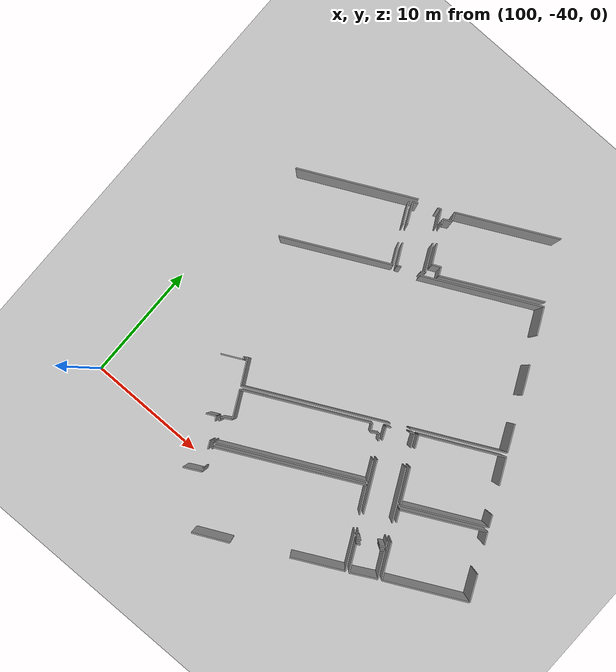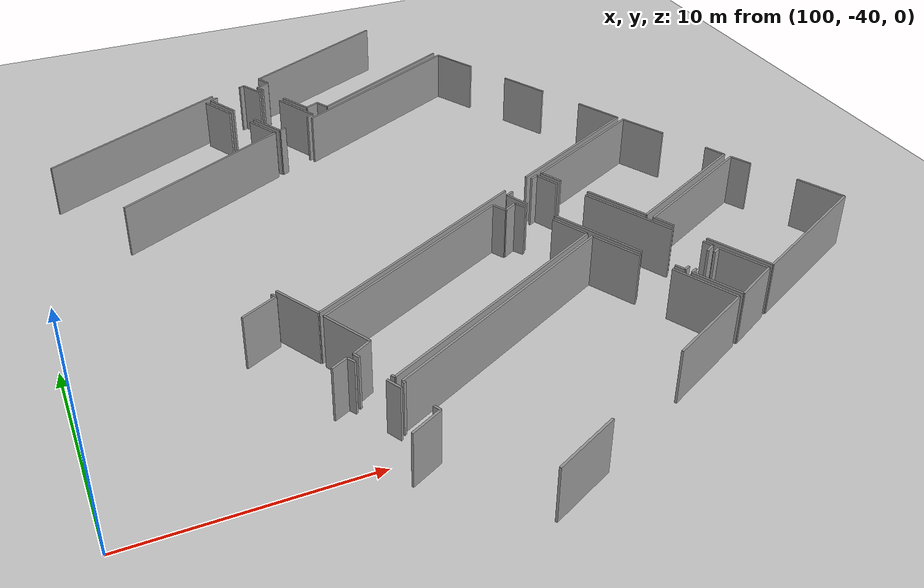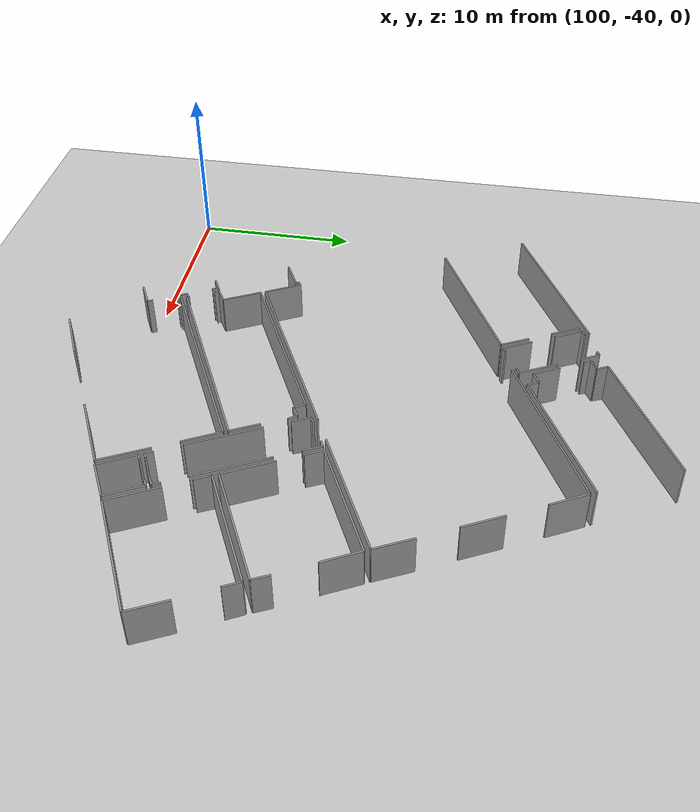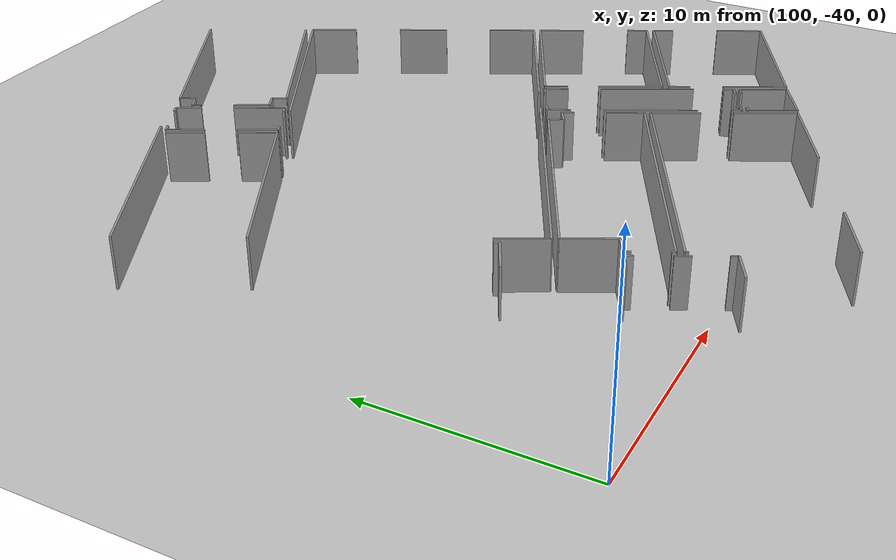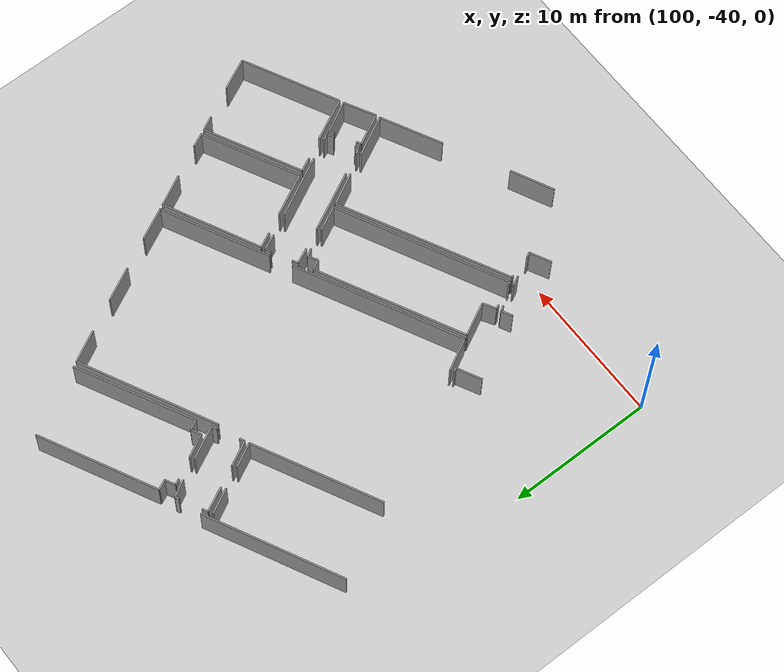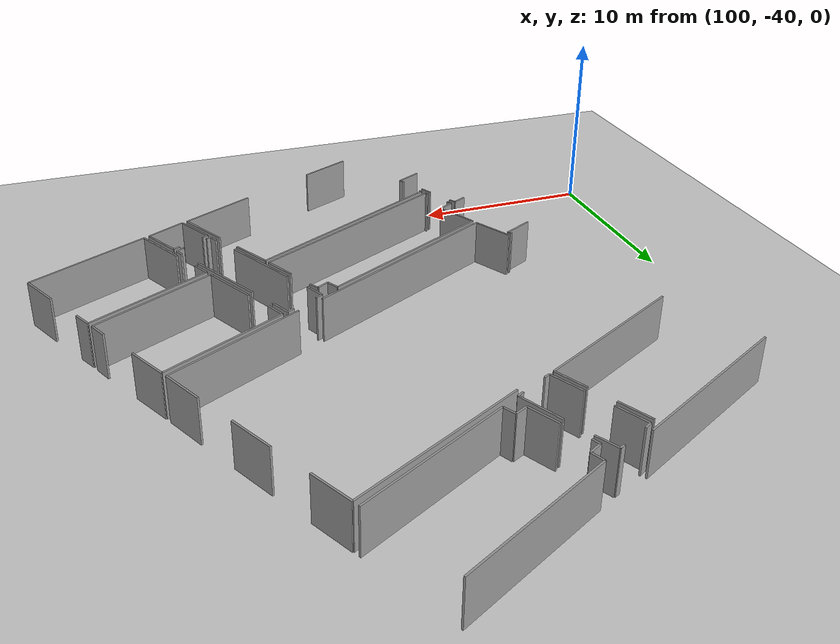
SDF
<sdf version="1.6">
 <world name="default">
  <model name="ground_plane">
   <static>1</static>
   <link name="link">
    <collision name="collision">
     <geometry><plane><normal>0 0 1</normal><size>100 100</size></plane></geometry>
     <surface><friction><ode><mu>100</mu><mu2>50</mu2></ode></friction></surface>
    </collision>
    <visual name="visual">
     <cast_shadows>0</cast_shadows>
     <geometry><plane><normal>0 0 1</normal><size>100 100</size></plane></geometry>
     <material>
      <script><uri>file://media/materials/scripts/gazebo.material</uri><name>Gazebo/Grey</name></script>
     </material>
    </visual>
   </link>
  </model>
  <model name="0510045926_A-40">
   <static>1</static>
   <link name="Wall_68">
    <collision name="Wall_68_Collision">
     <geometry><box><size>9.81023111275 0.1 2.5</size></box></geometry>
     <pose>4.90511555638 0 1.25 0 0 0</pose>
    </collision>
    <visual name="Wall_68_Visual">
     <pose>4.90511555638 0 1.25 0 0 0</pose>
     <geometry><box><size>9.81023111275 0.1 2.5</size></box></geometry>
     <material>
      <script><uri>file://media/materials/scripts/gazebo.material</uri><name>Gazebo/Grey</name></script>
      <ambient>1 1 1 1</ambient>
     </material>
    </visual>
    <pose>244.481219421 -114.623836328 0 0 0 -2.67345532135</pose>
   </link>
   <link name="Wall_72">
    <collision name="Wall_72_Collision">
     <geometry><box><size>8.47973960318 0.1 2.5</size></box></geometry>
     <pose>4.23986980159 0 1.25 0 0 0</pose>
    </collision>
    <visual name="Wall_72_Visual">
     <pose>4.23986980159 0 1.25 0 0 0</pose>
     <geometry><box><size>8.47973960318 0.1 2.5</size></box></geometry>
     <material>
      <script><uri>file://media/materials/scripts/gazebo.material</uri><name>Gazebo/Grey</name></script>
      <ambient>1 1 1 1</ambient>
     </material>
    </visual>
    <pose>247.27339878 -113.545039757 0 0 0 0.471599567978</pose>
   </link>
   <link name="Wall_75">
    <collision name="Wall_75_Collision">
     <geometry><box><size>8.49327325138 0.1 2.5</size></box></geometry>
     <pose>4.24663662569 0 1.25 0 0 0</pose>
    </collision>
    <visual name="Wall_75_Visual">
     <pose>4.24663662569 0 1.25 0 0 0</pose>
     <geometry><box><size>8.49327325138 0.1 2.5</size></box></geometry>
     <material>
      <script><uri>file://media/materials/scripts/gazebo.material</uri><name>Gazebo/Grey</name></script>
      <ambient>1 1 1 1</ambient>
     </material>
    </visual>
    <pose>257.127253574 -114.171757106 0 0 0 -2.66687804916</pose>
   </link>
   <link name="Wall_76">
    <collision name="Wall_76_Collision">
     <geometry><box><size>0.700529150853 0.1 2.5</size></box></geometry>
     <pose>0.350264575427 0 1.25 0 0 0</pose>
    </collision>
    <visual name="Wall_76_Visual">
     <pose>0.350264575427 0 1.25 0 0 0</pose>
     <geometry><box><size>0.700529150853 0.1 2.5</size></box></geometry>
     <material>
      <script><uri>file://media/materials/scripts/gazebo.material</uri><name>Gazebo/Grey</name></script>
      <ambient>1 1 1 1</ambient>
     </material>
    </visual>
    <pose>249.573139235 -118.053901753 0 0 0 2.05308035166</pose>
   </link>
   <link name="Wall_77">
    <collision name="Wall_77_Collision">
     <geometry><box><size>0.720053055425 0.1 2.5</size></box></geometry>
     <pose>0.360026527713 0 1.25 0 0 0</pose>
    </collision>
    <visual name="Wall_77_Visual">
     <pose>0.360026527713 0 1.25 0 0 0</pose>
     <geometry><box><size>0.720053055425 0.1 2.5</size></box></geometry>
     <material>
      <script><uri>file://media/materials/scripts/gazebo.material</uri><name>Gazebo/Grey</name></script>
      <ambient>1 1 1 1</ambient>
     </material>
    </visual>
    <pose>249.248231091 -117.433276432 0 0 0 -2.69623376527</pose>
   </link>
   <link name="Wall_78">
    <collision name="Wall_78_Collision">
     <geometry><box><size>1.67538316819 0.1 2.5</size></box></geometry>
     <pose>0.837691584093 0 1.25 0 0 0</pose>
    </collision>
    <visual name="Wall_78_Visual">
     <pose>0.837691584093 0 1.25 0 0 0</pose>
     <geometry><box><size>1.67538316819 0.1 2.5</size></box></geometry>
     <material>
      <script><uri>file://media/materials/scripts/gazebo.material</uri><name>Gazebo/Grey</name></script>
      <ambient>1 1 1 1</ambient>
     </material>
    </visual>
    <pose>248.598414804 -117.743462175 0 0 0 2.05971983139</pose>
   </link>
   <link name="Wall_79">
    <collision name="Wall_79_Collision">
     <geometry><box><size>0.420698711904 0.1 2.5</size></box></geometry>
     <pose>0.210349355952 0 1.25 0 0 0</pose>
    </collision>
    <visual name="Wall_79_Visual">
     <pose>0.210349355952 0 1.25 0 0 0</pose>
     <geometry><box><size>0.420698711904 0.1 2.5</size></box></geometry>
     <material>
      <script><uri>file://media/materials/scripts/gazebo.material</uri><name>Gazebo/Grey</name></script>
      <ambient>1 1 1 1</ambient>
     </material>
    </visual>
    <pose>247.103329674 -114.913969146 0 0 0 2.03363443786</pose>
   </link>
   <link name="Wall_80">
    <collision name="Wall_80_Collision">
     <geometry><box><size>0.740275066912 0.1 2.5</size></box></geometry>
     <pose>0.370137533456 0 1.25 0 0 0</pose>
    </collision>
    <visual name="Wall_80_Visual">
     <pose>0.370137533456 0 1.25 0 0 0</pose>
     <geometry><box><size>0.740275066912 0.1 2.5</size></box></geometry>
     <material>
      <script><uri>file://media/materials/scripts/gazebo.material</uri><name>Gazebo/Grey</name></script>
      <ambient>1 1 1 1</ambient>
     </material>
    </visual>
    <pose>246.915492153 -114.537532602 0 0 0 0.499538282074</pose>
   </link>
   <link name="Wall_81">
    <collision name="Wall_81_Collision">
     <geometry><box><size>0.701505440802 0.1 2.5</size></box></geometry>
     <pose>0.350752720401 0 1.25 0 0 0</pose>
    </collision>
    <visual name="Wall_81_Visual">
     <pose>0.350752720401 0 1.25 0 0 0</pose>
     <geometry><box><size>0.701505440802 0.1 2.5</size></box></geometry>
     <material>
      <script><uri>file://media/materials/scripts/gazebo.material</uri><name>Gazebo/Grey</name></script>
      <ambient>1 1 1 1</ambient>
     </material>
    </visual>
    <pose>247.565308441 -114.182925823 0 0 0 1.99996925808</pose>
   </link>
   <link name="Wall_83">
    <collision name="Wall_83_Collision">
     <geometry><box><size>1.79660687919 0.1 2.5</size></box></geometry>
     <pose>0.898303439596 0 1.25 0 0 0</pose>
    </collision>
    <visual name="Wall_83_Visual">
     <pose>0.898303439596 0 1.25 0 0 0</pose>
     <geometry><box><size>1.79660687919 0.1 2.5</size></box></geometry>
     <material>
      <script><uri>file://media/materials/scripts/gazebo.material</uri><name>Gazebo/Grey</name></script>
      <ambient>1 1 1 1</ambient>
     </material>
    </visual>
    <pose>244.016702309 -115.231262255 0 0 0 -1.09849229305</pose>
   </link>
   <link name="Wall_84">
    <collision name="Wall_84_Collision">
     <geometry><box><size>1.76981079068 0.1 2.5</size></box></geometry>
     <pose>0.884905395342 0 1.25 0 0 0</pose>
    </collision>
    <visual name="Wall_84_Visual">
     <pose>0.884905395342 0 1.25 0 0 0</pose>
     <geometry><box><size>1.76981079068 0.1 2.5</size></box></geometry>
     <material>
      <script><uri>file://media/materials/scripts/gazebo.material</uri><name>Gazebo/Grey</name></script>
      <ambient>1 1 1 1</ambient>
     </material>
    </visual>
    <pose>245.519402474 -118.153658707 0 0 0 -1.09881023242</pose>
   </link>
   <link name="Wall_85">
    <collision name="Wall_85_Collision">
     <geometry><box><size>9.13383298574 0.1 2.5</size></box></geometry>
     <pose>4.56691649287 0 1.25 0 0 0</pose>
    </collision>
    <visual name="Wall_85_Visual">
     <pose>4.56691649287 0 1.25 0 0 0</pose>
     <geometry><box><size>9.13383298574 0.1 2.5</size></box></geometry>
     <material>
      <script><uri>file://media/materials/scripts/gazebo.material</uri><name>Gazebo/Grey</name></script>
      <ambient>1 1 1 1</ambient>
     </material>
    </visual>
    <pose>246.324057798 -119.729970872 0 0 0 -2.67026426497</pose>
   </link>
   <link name="Wall_88">
    <collision name="Wall_88_Collision">
     <geometry><box><size>0.403103551538 0.1 2.5</size></box></geometry>
     <pose>0.201551775769 0 1.25 0 0 0</pose>
    </collision>
    <visual name="Wall_88_Visual">
     <pose>0.201551775769 0 1.25 0 0 0</pose>
     <geometry><box><size>0.403103551538 0.1 2.5</size></box></geometry>
     <material>
      <script><uri>file://media/materials/scripts/gazebo.material</uri><name>Gazebo/Grey</name></script>
      <ambient>1 1 1 1</ambient>
     </material>
    </visual>
    <pose>244.29845859 -115.059416308 0 0 0 0.504774349556</pose>
   </link>
   <link name="Wall_89">
    <collision name="Wall_89_Collision">
     <geometry><box><size>0.293353607777 0.1 2.5</size></box></geometry>
     <pose>0.146676803888 0 1.25 0 0 0</pose>
    </collision>
    <visual name="Wall_89_Visual">
     <pose>0.146676803888 0 1.25 0 0 0</pose>
     <geometry><box><size>0.293353607777 0.1 2.5</size></box></geometry>
     <material>
      <script><uri>file://media/materials/scripts/gazebo.material</uri><name>Gazebo/Grey</name></script>
      <ambient>1 1 1 1</ambient>
     </material>
    </visual>
    <pose>246.047378207 -114.167188085 0 0 0 0.451264341083</pose>
   </link>
   <link name="Wall_90">
    <collision name="Wall_90_Collision">
     <geometry><box><size>1.1989457336 0.1 2.5</size></box></geometry>
     <pose>0.599472866799 0 1.25 0 0 0</pose>
    </collision>
    <visual name="Wall_90_Visual">
     <pose>0.599472866799 0 1.25 0 0 0</pose>
     <geometry><box><size>1.1989457336 0.1 2.5</size></box></geometry>
     <material>
      <script><uri>file://media/materials/scripts/gazebo.material</uri><name>Gazebo/Grey</name></script>
      <ambient>1 1 1 1</ambient>
     </material>
    </visual>
    <pose>246.311366074 -114.039255503 0 0 0 -1.07428825048</pose>
   </link>
   <link name="Wall_91">
    <collision name="Wall_91_Collision">
     <geometry><box><size>2.36640308447 0.1 2.5</size></box></geometry>
     <pose>1.18320154223 0 1.25 0 0 0</pose>
    </collision>
    <visual name="Wall_91_Visual">
     <pose>1.18320154223 0 1.25 0 0 0</pose>
     <geometry><box><size>2.36640308447 0.1 2.5</size></box></geometry>
     <material>
      <script><uri>file://media/materials/scripts/gazebo.material</uri><name>Gazebo/Grey</name></script>
      <ambient>1 1 1 1</ambient>
     </material>
    </visual>
    <pose>247.560231751 -116.441545091 0 0 0 -1.10585350601</pose>
   </link>
   <link name="Wall_92">
    <collision name="Wall_92_Collision">
     <geometry><box><size>0.372161959182 0.1 2.5</size></box></geometry>
     <pose>0.186080979591 0 1.25 0 0 0</pose>
    </collision>
    <visual name="Wall_92_Visual">
     <pose>0.186080979591 0 1.25 0 0 0</pose>
     <geometry><box><size>0.372161959182 0.1 2.5</size></box></geometry>
     <material>
      <script><uri>file://media/materials/scripts/gazebo.material</uri><name>Gazebo/Grey</name></script>
      <ambient>1 1 1 1</ambient>
     </material>
    </visual>
    <pose>248.621259907 -118.556747873 0 0 0 -2.63217550479</pose>
   </link>
   <link name="Wall_93">
    <collision name="Wall_93_Collision">
     <geometry><box><size>0.345186905037 0.1 2.5</size></box></geometry>
     <pose>0.172593452518 0 1.25 0 0 0</pose>
    </collision>
    <visual name="Wall_93_Visual">
     <pose>0.172593452518 0 1.25 0 0 0</pose>
     <geometry><box><size>0.345186905037 0.1 2.5</size></box></geometry>
     <material>
      <script><uri>file://media/materials/scripts/gazebo.material</uri><name>Gazebo/Grey</name></script>
      <ambient>1 1 1 1</ambient>
     </material>
    </visual>
    <pose>246.923107188 -119.438568881 0 0 0 -2.70096729207</pose>
   </link>
   <link name="Wall_94">
    <collision name="Wall_94_Collision">
     <geometry><box><size>1.83971049925 0.1 2.5</size></box></geometry>
     <pose>0.919855249623 0 1.25 0 0 0</pose>
    </collision>
    <visual name="Wall_94_Visual">
     <pose>0.919855249623 0 1.25 0 0 0</pose>
     <geometry><box><size>1.83971049925 0.1 2.5</size></box></geometry>
     <material>
      <script><uri>file://media/materials/scripts/gazebo.material</uri><name>Gazebo/Grey</name></script>
      <ambient>1 1 1 1</ambient>
     </material>
    </visual>
    <pose>246.610890769 -119.585792884 0 0 0 2.05129003395</pose>
   </link>
   <link name="Wall_95">
    <collision name="Wall_95_Collision">
     <geometry><box><size>1.75046671518 0.1 2.5</size></box></geometry>
     <pose>0.875233357588 0 1.25 0 0 0</pose>
    </collision>
    <visual name="Wall_95_Visual">
     <pose>0.875233357588 0 1.25 0 0 0</pose>
     <geometry><box><size>1.75046671518 0.1 2.5</size></box></geometry>
     <material>
      <script><uri>file://media/materials/scripts/gazebo.material</uri><name>Gazebo/Grey</name></script>
      <ambient>1 1 1 1</ambient>
     </material>
    </visual>
    <pose>245.087883845 -116.621767576 0 0 0 2.03865921563</pose>
   </link>
   <link name="Wall_97">
    <collision name="Wall_97_Collision">
     <geometry><box><size>9.87083370166 0.1 2.5</size></box></geometry>
     <pose>4.93541685083 0 1.25 0 0 0</pose>
    </collision>
    <visual name="Wall_97_Visual">
     <pose>4.93541685083 0 1.25 0 0 0</pose>
     <geometry><box><size>9.87083370166 0.1 2.5</size></box></geometry>
     <material>
      <script><uri>file://media/materials/scripts/gazebo.material</uri><name>Gazebo/Grey</name></script>
      <ambient>1 1 1 1</ambient>
     </material>
    </visual>
    <pose>248.461344181 -118.972782597 0 0 0 0.467741751939</pose>
   </link>
   <link name="Wall_98">
    <collision name="Wall_98_Collision">
     <geometry><box><size>2.29858991237 0.1 2.5</size></box></geometry>
     <pose>1.14929495619 0 1.25 0 0 0</pose>
    </collision>
    <visual name="Wall_98_Visual">
     <pose>1.14929495619 0 1.25 0 0 0</pose>
     <geometry><box><size>2.29858991237 0.1 2.5</size></box></geometry>
     <material>
      <script><uri>file://media/materials/scripts/gazebo.material</uri><name>Gazebo/Grey</name></script>
      <ambient>1 1 1 1</ambient>
     </material>
    </visual>
    <pose>257.271939232 -114.522302533 0 0 0 -1.09099878348</pose>
   </link>
   <link name="Wall_99">
    <collision name="Wall_99_Collision">
     <geometry><box><size>2.45838987864 0.1 2.5</size></box></geometry>
     <pose>1.22919493932 0 1.25 0 0 0</pose>
    </collision>
    <visual name="Wall_99_Visual">
     <pose>1.22919493932 0 1.25 0 0 0</pose>
     <geometry><box><size>2.45838987864 0.1 2.5</size></box></geometry>
     <material>
      <script><uri>file://media/materials/scripts/gazebo.material</uri><name>Gazebo/Grey</name></script>
      <ambient>1 1 1 1</ambient>
     </material>
    </visual>
    <pose>259.399072235 -118.616652812 0 0 0 -1.10151523472</pose>
   </link>
   <link name="Wall_100">
    <collision name="Wall_100_Collision">
     <geometry><box><size>2.3173930552 0.1 2.5</size></box></geometry>
     <pose>1.1586965276 0 1.25 0 0 0</pose>
    </collision>
    <visual name="Wall_100_Visual">
     <pose>1.1586965276 0 1.25 0 0 0</pose>
     <geometry><box><size>2.3173930552 0.1 2.5</size></box></geometry>
     <material>
      <script><uri>file://media/materials/scripts/gazebo.material</uri><name>Gazebo/Grey</name></script>
      <ambient>1 1 1 1</ambient>
     </material>
    </visual>
    <pose>261.549050342 -122.8376665 0 0 0 -1.11239017073</pose>
   </link>
   <link name="Wall_101">
    <collision name="Wall_101_Collision">
     <geometry><box><size>7.75143099481 0.1 2.5</size></box></geometry>
     <pose>3.8757154974 0 1.25 0 0 0</pose>
    </collision>
    <visual name="Wall_101_Visual">
     <pose>3.8757154974 0 1.25 0 0 0</pose>
     <geometry><box><size>7.75143099481 0.1 2.5</size></box></geometry>
     <material>
      <script><uri>file://media/materials/scripts/gazebo.material</uri><name>Gazebo/Grey</name></script>
      <ambient>1 1 1 1</ambient>
     </material>
    </visual>
    <pose>262.57454167 -124.915809446 0 0 0 -2.67114980048</pose>
   </link>
   <link name="Wall_102">
    <collision name="Wall_102_Collision">
     <geometry><box><size>11.929153475 0.1 2.5</size></box></geometry>
     <pose>5.9645767375 0 1.25 0 0 0</pose>
    </collision>
    <visual name="Wall_102_Visual">
     <pose>5.9645767375 0 1.25 0 0 0</pose>
     <geometry><box><size>11.929153475 0.1 2.5</size></box></geometry>
     <material>
      <script><uri>file://media/materials/scripts/gazebo.material</uri><name>Gazebo/Grey</name></script>
      <ambient>1 1 1 1</ambient>
     </material>
    </visual>
    <pose>254.253847179 -129.1512917 0 0 0 -2.67065569776</pose>
   </link>
   <link name="Wall_103">
    <collision name="Wall_103_Collision">
     <geometry><box><size>2.31049185731 0.1 2.5</size></box></geometry>
     <pose>1.15524592865 0 1.25 0 0 0</pose>
    </collision>
    <visual name="Wall_103_Visual">
     <pose>1.15524592865 0 1.25 0 0 0</pose>
     <geometry><box><size>2.31049185731 0.1 2.5</size></box></geometry>
     <material>
      <script><uri>file://media/materials/scripts/gazebo.material</uri><name>Gazebo/Grey</name></script>
      <ambient>1 1 1 1</ambient>
     </material>
    </visual>
    <pose>243.623258854 -134.563804471 0 0 0 2.06156792197</pose>
   </link>
   <link name="Wall_106">
    <collision name="Wall_106_Collision">
     <geometry><box><size>10.6123861946 0.1 2.5</size></box></geometry>
     <pose>5.30619309732 0 1.25 0 0 0</pose>
    </collision>
    <visual name="Wall_106_Visual">
     <pose>5.30619309732 0 1.25 0 0 0</pose>
     <geometry><box><size>10.6123861946 0.1 2.5</size></box></geometry>
     <material>
      <script><uri>file://media/materials/scripts/gazebo.material</uri><name>Gazebo/Grey</name></script>
      <ambient>1 1 1 1</ambient>
     </material>
    </visual>
    <pose>243.737484373 -134.835915042 0 0 0 0.468675111168</pose>
   </link>
   <link name="Wall_107">
    <collision name="Wall_107_Collision">
     <geometry><box><size>0.704857785581 0.1 2.5</size></box></geometry>
     <pose>0.35242889279 0 1.25 0 0 0</pose>
    </collision>
    <visual name="Wall_107_Visual">
     <pose>0.35242889279 0 1.25 0 0 0</pose>
     <geometry><box><size>0.704857785581 0.1 2.5</size></box></geometry>
     <material>
      <script><uri>file://media/materials/scripts/gazebo.material</uri><name>Gazebo/Grey</name></script>
      <ambient>1 1 1 1</ambient>
     </material>
    </visual>
    <pose>253.205510747 -130.04225075 0 0 0 -1.05897576159</pose>
   </link>
   <link name="Wall_108">
    <collision name="Wall_108_Collision">
     <geometry><box><size>0.698462895456 0.1 2.5</size></box></geometry>
     <pose>0.349231447728 0 1.25 0 0 0</pose>
    </collision>
    <visual name="Wall_108_Visual">
     <pose>0.349231447728 0 1.25 0 0 0</pose>
     <geometry><box><size>0.698462895456 0.1 2.5</size></box></geometry>
     <material>
      <script><uri>file://media/materials/scripts/gazebo.material</uri><name>Gazebo/Grey</name></script>
      <ambient>1 1 1 1</ambient>
     </material>
    </visual>
    <pose>253.550725649 -130.656784044 0 0 0 0.525772414666</pose>
   </link>
   <link name="Wall_109">
    <collision name="Wall_109_Collision">
     <geometry><box><size>0.560371409261 0.1 2.5</size></box></geometry>
     <pose>0.28018570463 0 1.25 0 0 0</pose>
    </collision>
    <visual name="Wall_109_Visual">
     <pose>0.28018570463 0 1.25 0 0 0</pose>
     <geometry><box><size>0.560371409261 0.1 2.5</size></box></geometry>
     <material>
      <script><uri>file://media/materials/scripts/gazebo.material</uri><name>Gazebo/Grey</name></script>
      <ambient>1 1 1 1</ambient>
     </material>
    </visual>
    <pose>254.154851729 -130.306238617 0 0 0 -0.996111191947</pose>
   </link>
   <link name="Wall_110">
    <collision name="Wall_110_Collision">
     <geometry><box><size>1.77111357753 0.1 2.5</size></box></geometry>
     <pose>0.885556788763 0 1.25 0 0 0</pose>
    </collision>
    <visual name="Wall_110_Visual">
     <pose>0.885556788763 0 1.25 0 0 0</pose>
     <geometry><box><size>1.77111357753 0.1 2.5</size></box></geometry>
     <material>
      <script><uri>file://media/materials/scripts/gazebo.material</uri><name>Gazebo/Grey</name></script>
      <ambient>1 1 1 1</ambient>
     </material>
    </visual>
    <pose>255.101654366 -132.134354594 0 0 0 -1.10561045468</pose>
   </link>
   <link name="Wall_111">
    <collision name="Wall_111_Collision">
     <geometry><box><size>12.2915218357 0.1 2.5</size></box></geometry>
     <pose>6.14576091784 0 1.25 0 0 0</pose>
    </collision>
    <visual name="Wall_111_Visual">
     <pose>6.14576091784 0 1.25 0 0 0</pose>
     <geometry><box><size>12.2915218357 0.1 2.5</size></box></geometry>
     <material>
      <script><uri>file://media/materials/scripts/gazebo.material</uri><name>Gazebo/Grey</name></script>
      <ambient>1 1 1 1</ambient>
     </material>
    </visual>
    <pose>255.896156311 -133.717266456 0 0 0 -2.6737521196</pose>
   </link>
   <link name="Wall_112">
    <collision name="Wall_112_Collision">
     <geometry><box><size>0.168132729285 0.1 2.5</size></box></geometry>
     <pose>0.0840663646423 0 1.25 0 0 0</pose>
    </collision>
    <visual name="Wall_112_Visual">
     <pose>0.0840663646423 0 1.25 0 0 0</pose>
     <geometry><box><size>0.168132729285 0.1 2.5</size></box></geometry>
     <material>
      <script><uri>file://media/materials/scripts/gazebo.material</uri><name>Gazebo/Grey</name></script>
      <ambient>1 1 1 1</ambient>
     </material>
    </visual>
    <pose>244.925429774 -139.260250154 0 0 0 2.14539939734</pose>
   </link>
   <link name="Wall_113">
    <collision name="Wall_113_Collision">
     <geometry><box><size>0.292881992808 0.1 2.5</size></box></geometry>
     <pose>0.146440996404 0 1.25 0 0 0</pose>
    </collision>
    <visual name="Wall_113_Visual">
     <pose>0.146440996404 0 1.25 0 0 0</pose>
     <geometry><box><size>0.292881992808 0.1 2.5</size></box></geometry>
     <material>
      <script><uri>file://media/materials/scripts/gazebo.material</uri><name>Gazebo/Grey</name></script>
      <ambient>1 1 1 1</ambient>
     </material>
    </visual>
    <pose>244.125851139 -137.716428803 0 0 0 2.02863004781</pose>
   </link>
   <link name="Wall_114">
    <collision name="Wall_114_Collision">
     <geometry><box><size>0.969233809596 0.1 2.5</size></box></geometry>
     <pose>0.484616904798 0 1.25 0 0 0</pose>
    </collision>
    <visual name="Wall_114_Visual">
     <pose>0.484616904798 0 1.25 0 0 0</pose>
     <geometry><box><size>0.969233809596 0.1 2.5</size></box></geometry>
     <material>
      <script><uri>file://media/materials/scripts/gazebo.material</uri><name>Gazebo/Grey</name></script>
      <ambient>1 1 1 1</ambient>
     </material>
    </visual>
    <pose>243.99639555 -137.453710108 0 0 0 0.53233487584</pose>
   </link>
   <link name="Wall_115">
    <collision name="Wall_115_Collision">
     <geometry><box><size>2.39085577036 0.1 2.5</size></box></geometry>
     <pose>1.19542788518 0 1.25 0 0 0</pose>
    </collision>
    <visual name="Wall_115_Visual">
     <pose>1.19542788518 0 1.25 0 0 0</pose>
     <geometry><box><size>2.39085577036 0.1 2.5</size></box></geometry>
     <material>
      <script><uri>file://media/materials/scripts/gazebo.material</uri><name>Gazebo/Grey</name></script>
      <ambient>1 1 1 1</ambient>
     </material>
    </visual>
    <pose>244.831511013 -136.961778872 0 0 0 2.04607683933</pose>
   </link>
   <link name="Wall_116">
    <collision name="Wall_116_Collision">
     <geometry><box><size>6.99750749491 0.1 2.5</size></box></geometry>
     <pose>3.49875374745 0 1.25 0 0 0</pose>
    </collision>
    <visual name="Wall_116_Visual">
     <pose>3.49875374745 0 1.25 0 0 0</pose>
     <geometry><box><size>6.99750749491 0.1 2.5</size></box></geometry>
     <material>
      <script><uri>file://media/materials/scripts/gazebo.material</uri><name>Gazebo/Grey</name></script>
      <ambient>1 1 1 1</ambient>
     </material>
    </visual>
    <pose>256.479975632 -128.363135617 0 0 0 0.465821448087</pose>
   </link>
   <link name="Wall_117">
    <collision name="Wall_117_Collision">
     <geometry><box><size>2.27547616574 0.1 2.5</size></box></geometry>
     <pose>1.13773808287 0 1.25 0 0 0</pose>
    </collision>
    <visual name="Wall_117_Visual">
     <pose>1.13773808287 0 1.25 0 0 0</pose>
     <geometry><box><size>2.27547616574 0.1 2.5</size></box></geometry>
     <material>
      <script><uri>file://media/materials/scripts/gazebo.material</uri><name>Gazebo/Grey</name></script>
      <ambient>1 1 1 1</ambient>
     </material>
    </visual>
    <pose>262.731919052 -125.220156997 0 0 0 -1.09702134502</pose>
   </link>
   <link name="Wall_118">
    <collision name="Wall_118_Collision">
     <geometry><box><size>1.01102642705 0.1 2.5</size></box></geometry>
     <pose>0.505513213523 0 1.25 0 0 0</pose>
    </collision>
    <visual name="Wall_118_Visual">
     <pose>0.505513213523 0 1.25 0 0 0</pose>
     <geometry><box><size>1.01102642705 0.1 2.5</size></box></geometry>
     <material>
      <script><uri>file://media/materials/scripts/gazebo.material</uri><name>Gazebo/Grey</name></script>
      <ambient>1 1 1 1</ambient>
     </material>
    </visual>
    <pose>264.85651371 -129.297754199 0 0 0 -1.12983126002</pose>
   </link>
   <link name="Wall_119">
    <collision name="Wall_119_Collision">
     <geometry><box><size>7.03003257072 0.1 2.5</size></box></geometry>
     <pose>3.51501628536 0 1.25 0 0 0</pose>
    </collision>
    <visual name="Wall_119_Visual">
     <pose>3.51501628536 0 1.25 0 0 0</pose>
     <geometry><box><size>7.03003257072 0.1 2.5</size></box></geometry>
     <material>
      <script><uri>file://media/materials/scripts/gazebo.material</uri><name>Gazebo/Grey</name></script>
      <ambient>1 1 1 1</ambient>
     </material>
    </visual>
    <pose>265.288032339 -130.212066022 0 0 0 -2.67061396337</pose>
   </link>
   <link name="Wall_120">
    <collision name="Wall_120_Collision">
     <geometry><box><size>3.05417726646 0.1 2.5</size></box></geometry>
     <pose>1.52708863323 0 1.25 0 0 0</pose>
    </collision>
    <visual name="Wall_120_Visual">
     <pose>1.52708863323 0 1.25 0 0 0</pose>
     <geometry><box><size>3.05417726646 0.1 2.5</size></box></geometry>
     <material>
      <script><uri>file://media/materials/scripts/gazebo.material</uri><name>Gazebo/Grey</name></script>
      <ambient>1 1 1 1</ambient>
     </material>
    </visual>
    <pose>259.023397194 -133.402004023 0 0 0 2.04180330338</pose>
   </link>
   <link name="Wall_121">
    <collision name="Wall_121_Collision">
     <geometry><box><size>1.10606498426 0.1 2.5</size></box></geometry>
     <pose>0.553032492129 0 1.25 0 0 0</pose>
    </collision>
    <visual name="Wall_121_Visual">
     <pose>0.553032492129 0 1.25 0 0 0</pose>
     <geometry><box><size>1.10606498426 0.1 2.5</size></box></geometry>
     <material>
      <script><uri>file://media/materials/scripts/gazebo.material</uri><name>Gazebo/Grey</name></script>
      <ambient>1 1 1 1</ambient>
     </material>
    </visual>
    <pose>256.957184468 -129.360958987 0 0 0 2.01689287427</pose>
   </link>
   <link name="Wall_122">
    <collision name="Wall_122_Collision">
     <geometry><box><size>12.2732337741 0.1 2.5</size></box></geometry>
     <pose>6.13661688706 0 1.25 0 0 0</pose>
    </collision>
    <visual name="Wall_122_Visual">
     <pose>6.13661688706 0 1.25 0 0 0</pose>
     <geometry><box><size>12.2732337741 0.1 2.5</size></box></geometry>
     <material>
      <script><uri>file://media/materials/scripts/gazebo.material</uri><name>Gazebo/Grey</name></script>
      <ambient>1 1 1 1</ambient>
     </material>
    </visual>
    <pose>245.082807156 -139.570943566 0 0 0 0.473118984795</pose>
   </link>
   <link name="Wall_123">
    <collision name="Wall_123_Collision">
     <geometry><box><size>2.33537965552 0.1 2.5</size></box></geometry>
     <pose>1.16768982776 0 1.25 0 0 0</pose>
    </collision>
    <visual name="Wall_123_Visual">
     <pose>1.16768982776 0 1.25 0 0 0</pose>
     <geometry><box><size>2.33537965552 0.1 2.5</size></box></geometry>
     <material>
      <script><uri>file://media/materials/scripts/gazebo.material</uri><name>Gazebo/Grey</name></script>
      <ambient>1 1 1 1</ambient>
     </material>
    </visual>
    <pose>256.007843486 -133.978462144 0 0 0 -1.085710929</pose>
   </link>
   <link name="Wall_124">
    <collision name="Wall_124_Collision">
     <geometry><box><size>2.9825016059 0.1 2.5</size></box></geometry>
     <pose>1.49125080295 0 1.25 0 0 0</pose>
    </collision>
    <visual name="Wall_124_Visual">
     <pose>1.49125080295 0 1.25 0 0 0</pose>
     <geometry><box><size>2.9825016059 0.1 2.5</size></box></geometry>
     <material>
      <script><uri>file://media/materials/scripts/gazebo.material</uri><name>Gazebo/Grey</name></script>
      <ambient>1 1 1 1</ambient>
     </material>
    </visual>
    <pose>257.789761586 -137.398628025 0 0 0 -1.09710033493</pose>
   </link>
   <link name="Wall_125">
    <collision name="Wall_125_Collision">
     <geometry><box><size>4.45032408086 0.1 2.5</size></box></geometry>
     <pose>2.22516204043 0 1.25 0 0 0</pose>
    </collision>
    <visual name="Wall_125_Visual">
     <pose>2.22516204043 0 1.25 0 0 0</pose>
     <geometry><box><size>4.45032408086 0.1 2.5</size></box></geometry>
     <material>
      <script><uri>file://media/materials/scripts/gazebo.material</uri><name>Gazebo/Grey</name></script>
      <ambient>1 1 1 1</ambient>
     </material>
    </visual>
    <pose>259.150314437 -140.052721423 0 0 0 -2.66641523742</pose>
   </link>
   <link name="Wall_126">
    <collision name="Wall_126_Collision">
     <geometry><box><size>3.11713319503 0.1 2.5</size></box></geometry>
     <pose>1.55856659752 0 1.25 0 0 0</pose>
    </collision>
    <visual name="Wall_126_Visual">
     <pose>1.55856659752 0 1.25 0 0 0</pose>
     <geometry><box><size>3.11713319503 0.1 2.5</size></box></geometry>
     <material>
      <script><uri>file://media/materials/scripts/gazebo.material</uri><name>Gazebo/Grey</name></script>
      <ambient>1 1 1 1</ambient>
     </material>
    </visual>
    <pose>250.974305604 -144.26916609 0 0 0 -2.68275217461</pose>
   </link>
   <link name="Wall_128">
    <collision name="Wall_128_Collision">
     <geometry><box><size>0.149281656755 0.1 2.5</size></box></geometry>
     <pose>0.0746408283776 0 1.25 0 0 0</pose>
    </collision>
    <visual name="Wall_128_Visual">
     <pose>0.0746408283776 0 1.25 0 0 0</pose>
     <geometry><box><size>0.149281656755 0.1 2.5</size></box></geometry>
     <material>
      <script><uri>file://media/materials/scripts/gazebo.material</uri><name>Gazebo/Grey</name></script>
      <ambient>1 1 1 1</ambient>
     </material>
    </visual>
    <pose>245.125959018 -139.713852383 0 0 0 1.8640446503</pose>
   </link>
   <link name="Wall_129">
    <collision name="Wall_129_Collision">
     <geometry><box><size>2.29057559171 0.1 2.5</size></box></geometry>
     <pose>1.14528779585 0 1.25 0 0 0</pose>
    </collision>
    <visual name="Wall_129_Visual">
     <pose>1.14528779585 0 1.25 0 0 0</pose>
     <geometry><box><size>2.29057559171 0.1 2.5</size></box></geometry>
     <material>
      <script><uri>file://media/materials/scripts/gazebo.material</uri><name>Gazebo/Grey</name></script>
      <ambient>1 1 1 1</ambient>
     </material>
    </visual>
    <pose>259.439685753 -139.957279656 0 0 0 2.04866779804</pose>
   </link>
   <link name="Wall_130">
    <collision name="Wall_130_Collision">
     <geometry><box><size>0.338021008748 0.1 2.5</size></box></geometry>
     <pose>0.169010504374 0 1.25 0 0 0</pose>
    </collision>
    <visual name="Wall_130_Visual">
     <pose>0.169010504374 0 1.25 0 0 0</pose>
     <geometry><box><size>0.338021008748 0.1 2.5</size></box></geometry>
     <material>
      <script><uri>file://media/materials/scripts/gazebo.material</uri><name>Gazebo/Grey</name></script>
      <ambient>1 1 1 1</ambient>
     </material>
    </visual>
    <pose>258.386272631 -137.92330391 0 0 0 0.513371215702</pose>
   </link>
   <link name="Wall_131">
    <collision name="Wall_131_Collision">
     <geometry><box><size>0.389447045856 0.1 2.5</size></box></geometry>
     <pose>0.194723522928 0 1.25 0 0 0</pose>
    </collision>
    <visual name="Wall_131_Visual">
     <pose>0.194723522928 0 1.25 0 0 0</pose>
     <geometry><box><size>0.389447045856 0.1 2.5</size></box></geometry>
     <material>
      <script><uri>file://media/materials/scripts/gazebo.material</uri><name>Gazebo/Grey</name></script>
      <ambient>1 1 1 1</ambient>
     </material>
    </visual>
    <pose>260.056503557 -137.045544253 0 0 0 0.495133263468</pose>
   </link>
   <link name="Wall_132">
    <collision name="Wall_132_Collision">
     <geometry><box><size>2.26671708475 0.1 2.5</size></box></geometry>
     <pose>1.13335854237 0 1.25 0 0 0</pose>
    </collision>
    <visual name="Wall_132_Visual">
     <pose>1.13335854237 0 1.25 0 0 0</pose>
     <geometry><box><size>2.26671708475 0.1 2.5</size></box></geometry>
     <material>
      <script><uri>file://media/materials/scripts/gazebo.material</uri><name>Gazebo/Grey</name></script>
      <ambient>1 1 1 1</ambient>
     </material>
    </visual>
    <pose>260.399180115 -136.860498912 0 0 0 -1.08746582623</pose>
   </link>
   <link name="Wall_133">
    <collision name="Wall_133_Collision">
     <geometry><box><size>2.28894464547 0.1 2.5</size></box></geometry>
     <pose>1.14447232274 0 1.25 0 0 0</pose>
    </collision>
    <visual name="Wall_133_Visual">
     <pose>1.14447232274 0 1.25 0 0 0</pose>
     <geometry><box><size>2.28894464547 0.1 2.5</size></box></geometry>
     <material>
      <script><uri>file://media/materials/scripts/gazebo.material</uri><name>Gazebo/Grey</name></script>
      <ambient>1 1 1 1</ambient>
     </material>
    </visual>
    <pose>261.452593237 -138.867568202 0 0 0 -2.64540554897</pose>
   </link>
   <link name="Wall_134">
    <collision name="Wall_134_Collision">
     <geometry><box><size>7.017571738 0.1 2.5</size></box></geometry>
     <pose>3.508785869 0 1.25 0 0 0</pose>
    </collision>
    <visual name="Wall_134_Visual">
     <pose>3.508785869 0 1.25 0 0 0</pose>
     <geometry><box><size>7.017571738 0.1 2.5</size></box></geometry>
     <material>
      <script><uri>file://media/materials/scripts/gazebo.material</uri><name>Gazebo/Grey</name></script>
      <ambient>1 1 1 1</ambient>
     </material>
    </visual>
    <pose>259.188389611 -133.721835477 0 0 0 0.471477010465</pose>
   </link>
   <link name="Wall_135">
    <collision name="Wall_135_Collision">
     <geometry><box><size>1.03059555817 0.1 2.5</size></box></geometry>
     <pose>0.515297779086 0 1.25 0 0 0</pose>
    </collision>
    <visual name="Wall_135_Visual">
     <pose>0.515297779086 0 1.25 0 0 0</pose>
     <geometry><box><size>1.03059555817 0.1 2.5</size></box></geometry>
     <material>
      <script><uri>file://media/materials/scripts/gazebo.material</uri><name>Gazebo/Grey</name></script>
      <ambient>1 1 1 1</ambient>
     </material>
    </visual>
    <pose>265.440333031 -130.534435821 0 0 0 -1.09492196425</pose>
   </link>
   <link name="Wall_136">
    <collision name="Wall_136_Collision">
     <geometry><box><size>2.28841773044 0.1 2.5</size></box></geometry>
     <pose>1.14420886522 0 1.25 0 0 0</pose>
    </collision>
    <visual name="Wall_136_Visual">
     <pose>1.14420886522 0 1.25 0 0 0</pose>
     <geometry><box><size>2.28841773044 0.1 2.5</size></box></geometry>
     <material>
      <script><uri>file://media/materials/scripts/gazebo.material</uri><name>Gazebo/Grey</name></script>
      <ambient>1 1 1 1</ambient>
     </material>
    </visual>
    <pose>266.991261748 -133.502268646 0 0 0 -1.11726842392</pose>
   </link>
   <link name="Wall_137">
    <collision name="Wall_137_Collision">
     <geometry><box><size>7.0216341175 0.1 2.5</size></box></geometry>
     <pose>3.51081705875 0 1.25 0 0 0</pose>
    </collision>
    <visual name="Wall_137_Visual">
     <pose>3.51081705875 0 1.25 0 0 0</pose>
     <geometry><box><size>7.0216341175 0.1 2.5</size></box></geometry>
     <material>
      <script><uri>file://media/materials/scripts/gazebo.material</uri><name>Gazebo/Grey</name></script>
      <ambient>1 1 1 1</ambient>
     </material>
    </visual>
    <pose>267.993907972 -135.55934333 0 0 0 -2.67057285991</pose>
   </link>
   <link name="Wall_138">
    <collision name="Wall_138_Collision">
     <geometry><box><size>3.04845062435 0.1 2.5</size></box></geometry>
     <pose>1.52422531218 0 1.25 0 0 0</pose>
    </collision>
    <visual name="Wall_138_Visual">
     <pose>1.52422531218 0 1.25 0 0 0</pose>
     <geometry><box><size>3.04845062435 0.1 2.5</size></box></geometry>
     <material>
      <script><uri>file://media/materials/scripts/gazebo.material</uri><name>Gazebo/Grey</name></script>
      <ambient>1 1 1 1</ambient>
     </material>
    </visual>
    <pose>261.736887862 -138.745727648 0 0 0 2.03902422699</pose>
   </link>
   <link name="Wall_139">
    <collision name="Wall_139_Collision">
     <geometry><box><size>0.998996736523 0.1 2.5</size></box></geometry>
     <pose>0.499498368261 0 1.25 0 0 0</pose>
    </collision>
    <visual name="Wall_139_Visual">
     <pose>0.499498368261 0 1.25 0 0 0</pose>
     <geometry><box><size>0.998996736523 0.1 2.5</size></box></geometry>
     <material>
      <script><uri>file://media/materials/scripts/gazebo.material</uri><name>Gazebo/Grey</name></script>
      <ambient>1 1 1 1</ambient>
     </material>
    </visual>
    <pose>259.627523273 -134.61914039 0 0 0 2.02592141487</pose>
   </link>
   <link name="Wall_140">
    <collision name="Wall_140_Collision">
     <geometry><box><size>0.394474147055 0.1 2.5</size></box></geometry>
     <pose>0.197237073527 0 1.25 0 0 0</pose>
    </collision>
    <visual name="Wall_140_Visual">
     <pose>0.197237073527 0 1.25 0 0 0</pose>
     <geometry><box><size>0.394474147055 0.1 2.5</size></box></geometry>
     <material>
      <script><uri>file://media/materials/scripts/gazebo.material</uri><name>Gazebo/Grey</name></script>
      <ambient>1 1 1 1</ambient>
     </material>
    </visual>
    <pose>254.167543453 -129.536358617 0 0 0 0.505098507059</pose>
   </link>
   <link name="Wall_141">
    <collision name="Wall_141_Collision">
     <geometry><box><size>0.40744104168 0.1 2.5</size></box></geometry>
     <pose>0.20372052084 0 1.25 0 0 0</pose>
    </collision>
    <visual name="Wall_141_Visual">
     <pose>0.20372052084 0 1.25 0 0 0</pose>
     <geometry><box><size>0.40744104168 0.1 2.5</size></box></geometry>
     <material>
      <script><uri>file://media/materials/scripts/gazebo.material</uri><name>Gazebo/Grey</name></script>
      <ambient>1 1 1 1</ambient>
     </material>
    </visual>
    <pose>255.830159345 -128.664690988 0 0 0 0.428535198985</pose>
   </link>
   <link name="Wall_142">
    <collision name="Wall_142_Collision">
     <geometry><box><size>1.12855740773 0.1 2.5</size></box></geometry>
     <pose>0.564278703865 0 1.25 0 0 0</pose>
    </collision>
    <visual name="Wall_142_Visual">
     <pose>0.564278703865 0 1.25 0 0 0</pose>
     <geometry><box><size>1.12855740773 0.1 2.5</size></box></geometry>
     <material>
      <script><uri>file://media/materials/scripts/gazebo.material</uri><name>Gazebo/Grey</name></script>
      <ambient>1 1 1 1</ambient>
     </material>
    </visual>
    <pose>256.200757696 -128.495383385 0 0 0 -1.13420993062</pose>
   </link>
   <link name="Wall_143">
    <collision name="Wall_143_Collision">
     <geometry><box><size>4.45263113684 0.1 2.5</size></box></geometry>
     <pose>2.22631556842 0 1.25 0 0 0</pose>
    </collision>
    <visual name="Wall_143_Visual">
     <pose>2.22631556842 0 1.25 0 0 0</pose>
     <geometry><box><size>4.45263113684 0.1 2.5</size></box></geometry>
     <material>
      <script><uri>file://media/materials/scripts/gazebo.material</uri><name>Gazebo/Grey</name></script>
      <ambient>1 1 1 1</ambient>
     </material>
    </visual>
    <pose>257.398856476 -130.903257331 0 0 0 -1.09723113975</pose>
   </link>
   <link name="Wall_144">
    <collision name="Wall_144_Collision">
     <geometry><box><size>0.460641340642 0.1 2.5</size></box></geometry>
     <pose>0.230320670321 0 1.25 0 0 0</pose>
    </collision>
    <visual name="Wall_144_Visual">
     <pose>0.230320670321 0 1.25 0 0 0</pose>
     <geometry><box><size>0.460641340642 0.1 2.5</size></box></geometry>
     <material>
      <script><uri>file://media/materials/scripts/gazebo.material</uri><name>Gazebo/Grey</name></script>
      <ambient>1 1 1 1</ambient>
     </material>
    </visual>
    <pose>260.092040385 -136.168799934 0 0 0 -1.15078158901</pose>
   </link>
   <link name="Wall_145">
    <collision name="Wall_145_Collision">
     <geometry><box><size>0.486874199079 0.1 2.5</size></box></geometry>
     <pose>0.24343709954 0 1.25 0 0 0</pose>
    </collision>
    <visual name="Wall_145_Visual">
     <pose>0.24343709954 0 1.25 0 0 0</pose>
     <geometry><box><size>0.486874199079 0.1 2.5</size></box></geometry>
     <material>
      <script><uri>file://media/materials/scripts/gazebo.material</uri><name>Gazebo/Grey</name></script>
      <ambient>1 1 1 1</ambient>
     </material>
    </visual>
    <pose>260.279877906 -136.589403679 0 0 0 -2.58641968571</pose>
   </link>
   <link name="Wall_146">
    <collision name="Wall_146_Collision">
     <geometry><box><size>0.290357030452 0.1 2.5</size></box></geometry>
     <pose>0.145178515226 0 1.25 0 0 0</pose>
    </collision>
    <visual name="Wall_146_Visual">
     <pose>0.145178515226 0 1.25 0 0 0</pose>
     <geometry><box><size>0.290357030452 0.1 2.5</size></box></geometry>
     <material>
      <script><uri>file://media/materials/scripts/gazebo.material</uri><name>Gazebo/Grey</name></script>
      <ambient>1 1 1 1</ambient>
     </material>
    </visual>
    <pose>258.51065153 -137.491023778 0 0 0 -2.65292093806</pose>
   </link>
   <link name="Wall_147">
    <collision name="Wall_147_Collision">
     <geometry><box><size>0.468635387083 0.1 2.5</size></box></geometry>
     <pose>0.234317693542 0 1.25 0 0 0</pose>
    </collision>
    <visual name="Wall_147_Visual">
     <pose>0.234317693542 0 1.25 0 0 0</pose>
     <geometry><box><size>0.468635387083 0.1 2.5</size></box></geometry>
     <material>
      <script><uri>file://media/materials/scripts/gazebo.material</uri><name>Gazebo/Grey</name></script>
      <ambient>1 1 1 1</ambient>
     </material>
    </visual>
    <pose>258.254278698 -137.627332898 0 0 0 2.07999920519</pose>
   </link>
   <link name="Wall_148">
    <collision name="Wall_148_Collision">
     <geometry><box><size>4.35938574114 0.1 2.5</size></box></geometry>
     <pose>2.17969287057 0 1.25 0 0 0</pose>
    </collision>
    <visual name="Wall_148_Visual">
     <pose>2.17969287057 0 1.25 0 0 0</pose>
     <geometry><box><size>4.35938574114 0.1 2.5</size></box></geometry>
     <material>
      <script><uri>file://media/materials/scripts/gazebo.material</uri><name>Gazebo/Grey</name></script>
      <ambient>1 1 1 1</ambient>
     </material>
    </visual>
    <pose>257.292245991 -135.811147142 0 0 0 2.03962591118</pose>
   </link>
   <link name="Wall_149">
    <collision name="Wall_149_Collision">
     <geometry><box><size>1.11434279479 0.1 2.5</size></box></geometry>
     <pose>0.557171397396 0 1.25 0 0 0</pose>
    </collision>
    <visual name="Wall_149_Visual">
     <pose>0.557171397396 0 1.25 0 0 0</pose>
     <geometry><box><size>1.11434279479 0.1 2.5</size></box></geometry>
     <material>
      <script><uri>file://media/materials/scripts/gazebo.material</uri><name>Gazebo/Grey</name></script>
      <ambient>1 1 1 1</ambient>
     </material>
    </visual>
    <pose>254.62952222 -130.550427394 0 0 0 1.99827215604</pose>
   </link>
   <link name="Wall_211">
    <collision name="Wall_211_Collision">
     <geometry><box><size>1.542382313 0.1 2.5</size></box></geometry>
     <pose>0.7711911565 0 1.25 0 0 0</pose>
    </collision>
    <visual name="Wall_211_Visual">
     <pose>0.7711911565 0 1.25 0 0 0</pose>
     <geometry><box><size>1.542382313 0.1 2.5</size></box></geometry>
     <material>
      <script><uri>file://media/materials/scripts/gazebo.material</uri><name>Gazebo/Grey</name></script>
      <ambient>1 1 1 1</ambient>
     </material>
    </visual>
    <pose>245.732623443 -141.533084152 0 0 0 -2.66528562963</pose>
   </link>
   <link name="Wall_260">
    <collision name="Wall_260_Collision">
     <geometry><box><size>0.246376413599 0.1 2.5</size></box></geometry>
     <pose>0.123188206799 0 1.25 0 0 0</pose>
    </collision>
    <visual name="Wall_260_Visual">
     <pose>0.123188206799 0 1.25 0 0 0</pose>
     <geometry><box><size>0.246376413599 0.1 2.5</size></box></geometry>
     <material>
      <script><uri>file://media/materials/scripts/gazebo.material</uri><name>Gazebo/Grey</name></script>
      <ambient>1 1 1 1</ambient>
     </material>
    </visual>
    <pose>242.298242831 -132.666645514 0 0 0 -1.0887176254</pose>
   </link>
   <link name="Wall_261">
    <collision name="Wall_261_Collision">
     <geometry><box><size>1.80010599056 0.1 2.5</size></box></geometry>
     <pose>0.90005299528 0 1.25 0 0 0</pose>
    </collision>
    <visual name="Wall_261_Visual">
     <pose>0.90005299528 0 1.25 0 0 0</pose>
     <geometry><box><size>1.80010599056 0.1 2.5</size></box></geometry>
     <material>
      <script><uri>file://media/materials/scripts/gazebo.material</uri><name>Gazebo/Grey</name></script>
      <ambient>1 1 1 1</ambient>
     </material>
    </visual>
    <pose>242.41246835 -132.884943173 0 0 0 -2.66457550823</pose>
   </link>
   <link name="Wall_263">
    <collision name="Wall_263_Collision">
     <geometry><box><size>0.803507205549 0.1 2.5</size></box></geometry>
     <pose>0.401753602774 0 1.25 0 0 0</pose>
    </collision>
    <visual name="Wall_263_Visual">
     <pose>0.401753602774 0 1.25 0 0 0</pose>
     <geometry><box><size>0.803507205549 0.1 2.5</size></box></geometry>
     <material>
      <script><uri>file://media/materials/scripts/gazebo.material</uri><name>Gazebo/Grey</name></script>
      <ambient>1 1 1 1</ambient>
     </material>
    </visual>
    <pose>242.983595946 -137.940818489 0 0 0 0.471559283423</pose>
   </link>
   <link name="Wall_264">
    <collision name="Wall_264_Collision">
     <geometry><box><size>0.390702402244 0.1 2.5</size></box></geometry>
     <pose>0.195351201122 0 1.25 0 0 0</pose>
    </collision>
    <visual name="Wall_264_Visual">
     <pose>0.195351201122 0 1.25 0 0 0</pose>
     <geometry><box><size>0.390702402244 0.1 2.5</size></box></geometry>
     <material>
      <script><uri>file://media/materials/scripts/gazebo.material</uri><name>Gazebo/Grey</name></script>
      <ambient>1 1 1 1</ambient>
     </material>
    </visual>
    <pose>243.6994092 -137.575804497 0 0 0 -1.03182529348</pose>
   </link>
   <link name="Wall_265">
    <collision name="Wall_265_Collision">
     <geometry><box><size>0.699517188577 0.1 2.5</size></box></geometry>
     <pose>0.349758594288 0 1.25 0 0 0</pose>
    </collision>
    <visual name="Wall_265_Visual">
     <pose>0.349758594288 0 1.25 0 0 0</pose>
     <geometry><box><size>0.699517188577 0.1 2.5</size></box></geometry>
     <material>
      <script><uri>file://media/materials/scripts/gazebo.material</uri><name>Gazebo/Grey</name></script>
      <ambient>1 1 1 1</ambient>
     </material>
    </visual>
    <pose>244.59036825 -139.295786982 0 0 0 -1.10000830036</pose>
   </link>
   <link name="Wall_266">
    <collision name="Wall_266_Collision">
     <geometry><box><size>0.328295045859 0.1 2.5</size></box></geometry>
     <pose>0.16414752293 0 1.25 0 0 0</pose>
    </collision>
    <visual name="Wall_266_Visual">
     <pose>0.16414752293 0 1.25 0 0 0</pose>
     <geometry><box><size>0.328295045859 0.1 2.5</size></box></geometry>
     <material>
      <script><uri>file://media/materials/scripts/gazebo.material</uri><name>Gazebo/Grey</name></script>
      <ambient>1 1 1 1</ambient>
     </material>
    </visual>
    <pose>245.58539944 -141.239651485 0 0 0 -1.10576559281</pose>
   </link>
   <pose>-133.95 101.113233661 0 0 0 0</pose>
  </model>
 </world>
</sdf>
